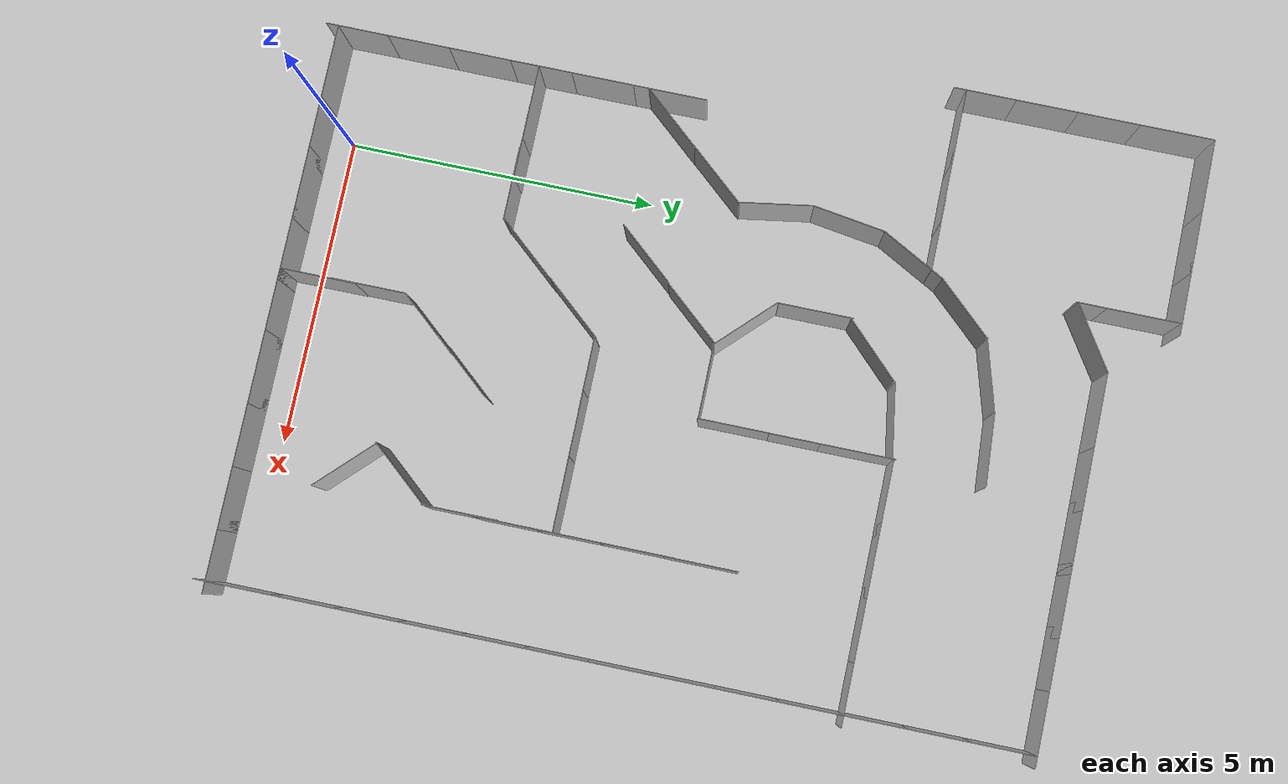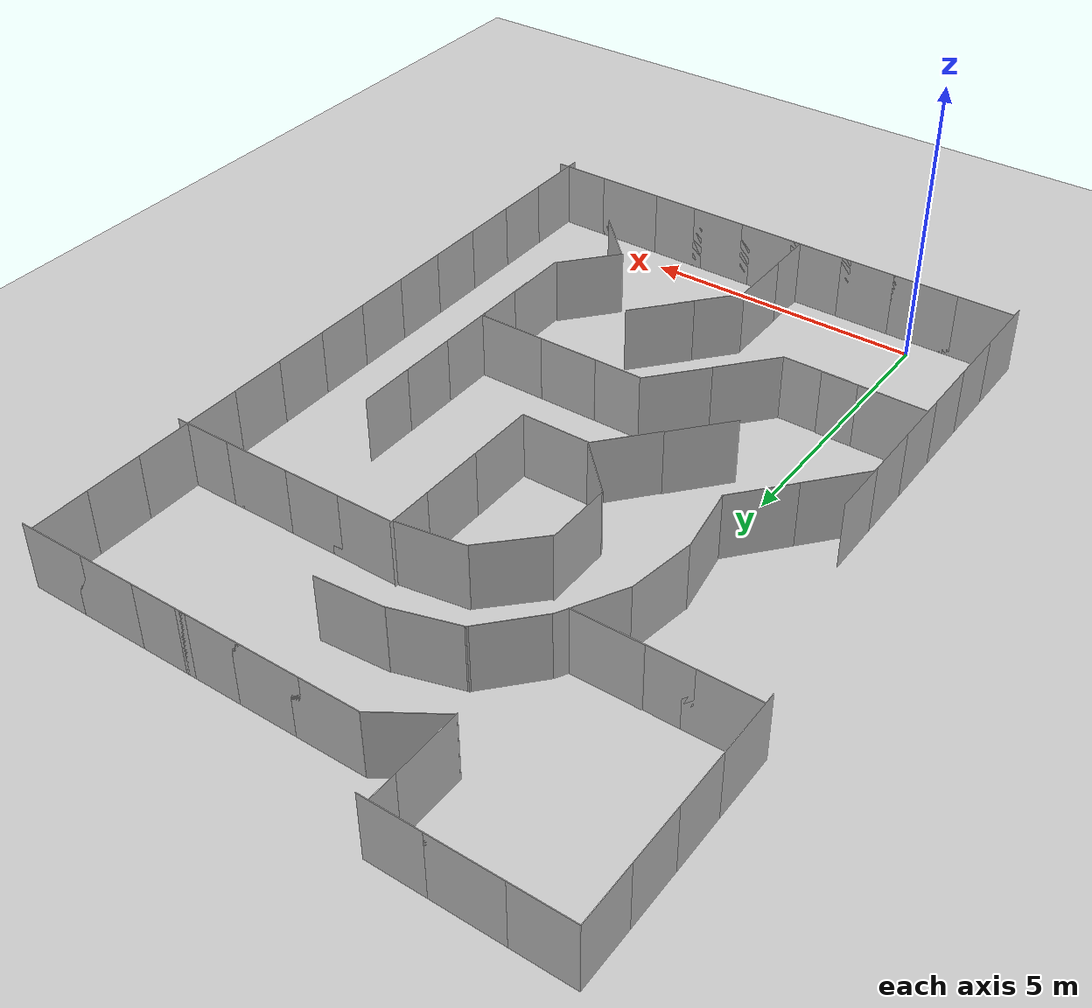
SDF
<sdf version="1.6">
 <world name="default">
  <light name="sun" type="directional">
   <pose>0 0 10 0 -0 0</pose>
   <diffuse>0.8 0.8 0.8 1</diffuse>
   <specular>0.2 0.2 0.2 1</specular>
   <attenuation>
    <range>1000</range>
    <constant>0.9</constant>
    <linear>0.01</linear>
    <quadratic>0.001</quadratic>
   </attenuation>
   <direction>-0.5 0.1 -0.9</direction>
  </light>
  <model name="ground_plane">
   <static>1</static>
   <link name="link">
    <collision name="collision">
     <geometry><plane><normal>0 0 1</normal><size>100 100</size></plane></geometry>
     <surface>
      <contact><collide_bitmask>65535</collide_bitmask></contact>
      <friction><ode><mu>100</mu><mu2>50</mu2></ode></friction>
     </surface>
    </collision>
    <visual name="visual">
     <cast_shadows>0</cast_shadows>
     <geometry><plane><normal>0 0 1</normal><size>100 100</size></plane></geometry>
     <material>
      <script><uri>file://media/materials/scripts/gazebo.material</uri><name>Gazebo/Grey</name></script>
     </material>
    </visual>
   </link>
  </model>
  <gravity>0 0 -9.8</gravity>
  <magnetic_field>6e-06 2.3e-05 -4.2e-05</magnetic_field>
  <atmosphere type="adiabatic"/>
  <physics name="default_physics" default="0" type="ode">
   <max_step_size>0.001</max_step_size>
   <real_time_factor>1</real_time_factor>
   <real_time_update_rate>1000</real_time_update_rate>
  </physics>
  <scene><ambient>0.4 0.4 0.4 1</ambient><background>0.7 0.7 0.7 1</background><shadows>1</shadows></scene>
  <audio><device>default</device></audio>
  <spherical_coordinates>
   <surface_model>EARTH_WGS84</surface_model>
   <latitude_deg>0</latitude_deg>
   <longitude_deg>0</longitude_deg>
   <elevation>0</elevation>
   <heading_deg>0</heading_deg>
  </spherical_coordinates>
  <model name="nist_maze_wall_120">
   <static>1</static>
   <link name="nist_maze_wall_120_link">
    <collision name="collision">
     <geometry>
      <mesh><uri>model://nist_maze_wall_120/meshes/nist_maze_wall_120.dae</uri><scale>1 1 1</scale></mesh>
     </geometry>
    </collision>
    <visual name="visual">
     <geometry>
      <mesh><uri>model://nist_maze_wall_120/meshes/nist_maze_wall_120.dae</uri><scale>1 1 1</scale></mesh>
     </geometry>
    </visual>
   </link>
   <pose>-1 -1 0 0 -0 0</pose>
  </model>
  <model name="nist_maze_wall_120_clone">
   <static>1</static>
   <link name="nist_maze_wall_120_link">
    <collision name="collision">
     <geometry>
      <mesh><uri>model://nist_maze_wall_120/meshes/nist_maze_wall_120.dae</uri><scale>1 1 1</scale></mesh>
     </geometry>
    </collision>
    <visual name="visual">
     <geometry>
      <mesh><uri>model://nist_maze_wall_120/meshes/nist_maze_wall_120.dae</uri><scale>1 1 1</scale></mesh>
     </geometry>
    </visual>
   </link>
   <pose>0 -1 0 0 -0 0</pose>
  </model>
  <model name="nist_maze_wall_120_clone_0">
   <static>1</static>
   <link name="nist_maze_wall_120_link">
    <collision name="collision">
     <geometry>
      <mesh><uri>model://nist_maze_wall_120/meshes/nist_maze_wall_120.dae</uri><scale>1 1 1</scale></mesh>
     </geometry>
    </collision>
    <visual name="visual">
     <geometry>
      <mesh><uri>model://nist_maze_wall_120/meshes/nist_maze_wall_120.dae</uri><scale>1 1 1</scale></mesh>
     </geometry>
    </visual>
   </link>
   <pose>1 -1 0 0 -0 0</pose>
  </model>
  <model name="nist_maze_wall_120_clone_0_clone_2">
   <static>1</static>
   <link name="nist_maze_wall_120_link">
    <collision name="collision">
     <geometry>
      <mesh><uri>model://nist_maze_wall_120/meshes/nist_maze_wall_120.dae</uri><scale>1 1 1</scale></mesh>
     </geometry>
    </collision>
    <visual name="visual">
     <geometry>
      <mesh><uri>model://nist_maze_wall_120/meshes/nist_maze_wall_120.dae</uri><scale>1 1 1</scale></mesh>
     </geometry>
    </visual>
   </link>
   <pose>4 -1 0 0 -0 0</pose>
  </model>
  <model name="nist_maze_wall_120_clone_0_clone_7">
   <static>1</static>
   <link name="nist_maze_wall_120_link">
    <collision name="collision">
     <geometry>
      <mesh><uri>model://nist_maze_wall_120/meshes/nist_maze_wall_120.dae</uri><scale>1 1 1</scale></mesh>
     </geometry>
    </collision>
    <visual name="visual">
     <geometry>
      <mesh><uri>model://nist_maze_wall_120/meshes/nist_maze_wall_120.dae</uri><scale>1 1 1</scale></mesh>
     </geometry>
    </visual>
   </link>
   <pose>5 -1 0 0 -0 0</pose>
  </model>
  <model name="nist_maze_wall_120_clone_0_clone_8">
   <static>1</static>
   <link name="nist_maze_wall_120_link">
    <collision name="collision">
     <geometry>
      <mesh><uri>model://nist_maze_wall_120/meshes/nist_maze_wall_120.dae</uri><scale>1 1 1</scale></mesh>
     </geometry>
    </collision>
    <visual name="visual">
     <geometry>
      <mesh><uri>model://nist_maze_wall_120/meshes/nist_maze_wall_120.dae</uri><scale>1 1 1</scale></mesh>
     </geometry>
    </visual>
   </link>
   <pose>6 -1 0 0 -0 0</pose>
  </model>
  <model name="nist_maze_wall_120_clone_0_clone_0_clone">
   <static>1</static>
   <link name="nist_maze_wall_120_link">
    <collision name="collision">
     <geometry>
      <mesh><uri>model://nist_maze_wall_120/meshes/nist_maze_wall_120.dae</uri><scale>1 1 1</scale></mesh>
     </geometry>
    </collision>
    <visual name="visual">
     <geometry>
      <mesh><uri>model://nist_maze_wall_120/meshes/nist_maze_wall_120.dae</uri><scale>1 1 1</scale></mesh>
     </geometry>
    </visual>
   </link>
   <pose>2 -1 0 0 -0 0</pose>
  </model>
  <model name="nist_maze_wall_120_clone_0_clone_8_clone">
   <static>1</static>
   <link name="nist_maze_wall_120_link">
    <collision name="collision">
     <geometry>
      <mesh><uri>model://nist_maze_wall_120/meshes/nist_maze_wall_120.dae</uri><scale>1 1 1</scale></mesh>
     </geometry>
    </collision>
    <visual name="visual">
     <geometry>
      <mesh><uri>model://nist_maze_wall_120/meshes/nist_maze_wall_120.dae</uri><scale>1 1 1</scale></mesh>
     </geometry>
    </visual>
   </link>
   <pose>3 1 0 0 -0 1.5708</pose>
  </model>
  <model name="nist_maze_wall_120_clone_0_clone_8_clone_clone">
   <static>1</static>
   <link name="nist_maze_wall_120_link">
    <collision name="collision">
     <geometry>
      <mesh><uri>model://nist_maze_wall_120/meshes/nist_maze_wall_120.dae</uri><scale>1 1 1</scale></mesh>
     </geometry>
    </collision>
    <visual name="visual">
     <geometry>
      <mesh><uri>model://nist_maze_wall_120/meshes/nist_maze_wall_120.dae</uri><scale>1 1 1</scale></mesh>
     </geometry>
    </visual>
   </link>
   <pose>3.00875 0.203464 0 0 -0 1.5708</pose>
  </model>
  <model name="nist_maze_wall_120_clone_0_clone_8_clone_clone_0">
   <static>1</static>
   <link name="nist_maze_wall_120_link">
    <collision name="collision">
     <geometry>
      <mesh><uri>model://nist_maze_wall_120/meshes/nist_maze_wall_120.dae</uri><scale>1 1 1</scale></mesh>
     </geometry>
    </collision>
    <visual name="visual">
     <geometry>
      <mesh><uri>model://nist_maze_wall_120/meshes/nist_maze_wall_120.dae</uri><scale>1 1 1</scale></mesh>
     </geometry>
    </visual>
   </link>
   <pose>6.18807 6 0 0 -0 1.5708</pose>
  </model>
  <model name="nist_maze_wall_120_clone_0_clone_8_clone_clone_1">
   <static>1</static>
   <link name="nist_maze_wall_120_link">
    <collision name="collision">
     <geometry>
      <mesh><uri>model://nist_maze_wall_120/meshes/nist_maze_wall_120.dae</uri><scale>1 1 1</scale></mesh>
     </geometry>
    </collision>
    <visual name="visual">
     <geometry>
      <mesh><uri>model://nist_maze_wall_120/meshes/nist_maze_wall_120.dae</uri><scale>1 1 1</scale></mesh>
     </geometry>
    </visual>
   </link>
   <pose>6.18772 5 0 0 -0 1.5708</pose>
  </model>
  <model name="nist_maze_wall_120_clone_0_clone_8_clone_clone_2">
   <static>1</static>
   <link name="nist_maze_wall_120_link">
    <collision name="collision">
     <geometry>
      <mesh><uri>model://nist_maze_wall_120/meshes/nist_maze_wall_120.dae</uri><scale>1 1 1</scale></mesh>
     </geometry>
    </collision>
    <visual name="visual">
     <geometry>
      <mesh><uri>model://nist_maze_wall_120/meshes/nist_maze_wall_120.dae</uri><scale>1 1 1</scale></mesh>
     </geometry>
    </visual>
   </link>
   <pose>8 2 0 0 -0 1.5708</pose>
  </model>
  <model name="nist_maze_wall_120_clone_0_clone_8_clone_clone_3">
   <static>1</static>
   <link name="nist_maze_wall_120_link">
    <collision name="collision">
     <geometry>
      <mesh><uri>model://nist_maze_wall_120/meshes/nist_maze_wall_120.dae</uri><scale>1 1 1</scale></mesh>
     </geometry>
    </collision>
    <visual name="visual">
     <geometry>
      <mesh><uri>model://nist_maze_wall_120/meshes/nist_maze_wall_120.dae</uri><scale>1 1 1</scale></mesh>
     </geometry>
    </visual>
   </link>
   <pose>8 0 0 0 -0 1.5708</pose>
  </model>
  <model name="nist_maze_wall_120_clone_0_clone_8_clone_clone_4">
   <static>1</static>
   <link name="nist_maze_wall_120_link">
    <collision name="collision">
     <geometry>
      <mesh><uri>model://nist_maze_wall_120/meshes/nist_maze_wall_120.dae</uri><scale>1 1 1</scale></mesh>
     </geometry>
    </collision>
    <visual name="visual">
     <geometry>
      <mesh><uri>model://nist_maze_wall_120/meshes/nist_maze_wall_120.dae</uri><scale>1 1 1</scale></mesh>
     </geometry>
    </visual>
   </link>
   <pose>8 1 0 0 -0 1.5708</pose>
  </model>
  <model name="nist_maze_wall_120_clone_0_clone_8_clone_clone_5">
   <static>1</static>
   <link name="nist_maze_wall_120_link">
    <collision name="collision">
     <geometry>
      <mesh><uri>model://nist_maze_wall_120/meshes/nist_maze_wall_120.dae</uri><scale>1 1 1</scale></mesh>
     </geometry>
    </collision>
    <visual name="visual">
     <geometry>
      <mesh><uri>model://nist_maze_wall_120/meshes/nist_maze_wall_120.dae</uri><scale>1 1 1</scale></mesh>
     </geometry>
    </visual>
   </link>
   <pose>8 4 0 0 -0 1.5708</pose>
  </model>
  <model name="nist_maze_wall_120_clone_0_clone_8_clone_clone_6">
   <static>1</static>
   <link name="nist_maze_wall_120_link">
    <collision name="collision">
     <geometry>
      <mesh><uri>model://nist_maze_wall_120/meshes/nist_maze_wall_120.dae</uri><scale>1 1 1</scale></mesh>
     </geometry>
    </collision>
    <visual name="visual">
     <geometry>
      <mesh><uri>model://nist_maze_wall_120/meshes/nist_maze_wall_120.dae</uri><scale>1 1 1</scale></mesh>
     </geometry>
    </visual>
   </link>
   <pose>-1 0 0 0 -0 1.5708</pose>
  </model>
  <model name="nist_maze_wall_120_clone_0_clone_8_clone_clone_7">
   <static>1</static>
   <link name="nist_maze_wall_120_link">
    <collision name="collision">
     <geometry>
      <mesh><uri>model://nist_maze_wall_120/meshes/nist_maze_wall_120.dae</uri><scale>1 1 1</scale></mesh>
     </geometry>
    </collision>
    <visual name="visual">
     <geometry>
      <mesh><uri>model://nist_maze_wall_120/meshes/nist_maze_wall_120.dae</uri><scale>1 1 1</scale></mesh>
     </geometry>
    </visual>
   </link>
   <pose>-1 1 0 0 -0 1.5708</pose>
  </model>
  <model name="nist_maze_wall_120_clone_0_clone_8_clone_clone_11">
   <static>1</static>
   <link name="nist_maze_wall_120_link">
    <collision name="collision">
     <geometry>
      <mesh><uri>model://nist_maze_wall_120/meshes/nist_maze_wall_120.dae</uri><scale>1 1 1</scale></mesh>
     </geometry>
    </collision>
    <visual name="visual">
     <geometry>
      <mesh><uri>model://nist_maze_wall_120/meshes/nist_maze_wall_120.dae</uri><scale>1 1 1</scale></mesh>
     </geometry>
    </visual>
   </link>
   <pose>-1 2 0 0 -0 1.5708</pose>
  </model>
  <model name="nist_maze_wall_120_clone_1">
   <static>1</static>
   <link name="nist_maze_wall_120_link">
    <collision name="collision">
     <geometry>
      <mesh><uri>model://nist_maze_wall_120/meshes/nist_maze_wall_120.dae</uri><scale>1 1 1</scale></mesh>
     </geometry>
    </collision>
    <visual name="visual">
     <geometry>
      <mesh><uri>model://nist_maze_wall_120/meshes/nist_maze_wall_120.dae</uri><scale>1 1 1</scale></mesh>
     </geometry>
    </visual>
   </link>
   <pose>-1 2.27384 0 0 -0 0</pose>
  </model>
  <model name="nist_maze_wall_120_clone_2">
   <static>1</static>
   <link name="nist_maze_wall_120_link">
    <collision name="collision">
     <geometry>
      <mesh><uri>model://nist_maze_wall_120/meshes/nist_maze_wall_120.dae</uri><scale>1 1 1</scale></mesh>
     </geometry>
    </collision>
    <visual name="visual">
     <geometry>
      <mesh><uri>model://nist_maze_wall_120/meshes/nist_maze_wall_120.dae</uri><scale>1 1 1</scale></mesh>
     </geometry>
    </visual>
   </link>
   <pose>0.34177 2.25834 0 0 -0 0</pose>
  </model>
  <model name="nist_maze_wall_120_clone_3">
   <static>1</static>
   <link name="nist_maze_wall_120_link">
    <collision name="collision">
     <geometry>
      <mesh><uri>model://nist_maze_wall_120/meshes/nist_maze_wall_120.dae</uri><scale>1 1 1</scale></mesh>
     </geometry>
    </collision>
    <visual name="visual">
     <geometry>
      <mesh><uri>model://nist_maze_wall_120/meshes/nist_maze_wall_120.dae</uri><scale>1 1 1</scale></mesh>
     </geometry>
    </visual>
   </link>
   <pose>3.05818 4.05787 0 0 -0 0</pose>
  </model>
  <model name="nist_maze_wall_120_clone_4">
   <static>1</static>
   <link name="nist_maze_wall_120_link">
    <collision name="collision">
     <geometry>
      <mesh><uri>model://nist_maze_wall_120/meshes/nist_maze_wall_120.dae</uri><scale>1 1 1</scale></mesh>
     </geometry>
    </collision>
    <visual name="visual">
     <geometry>
      <mesh><uri>model://nist_maze_wall_120/meshes/nist_maze_wall_120.dae</uri><scale>1 1 1</scale></mesh>
     </geometry>
    </visual>
   </link>
   <pose>4.98289 4.06377 0 0 -0 0</pose>
  </model>
  <model name="nist_maze_wall_120_clone_5">
   <static>1</static>
   <link name="nist_maze_wall_120_link">
    <collision name="collision">
     <geometry>
      <mesh><uri>model://nist_maze_wall_120/meshes/nist_maze_wall_120.dae</uri><scale>1 1 1</scale></mesh>
     </geometry>
    </collision>
    <visual name="visual">
     <geometry>
      <mesh><uri>model://nist_maze_wall_120/meshes/nist_maze_wall_120.dae</uri><scale>1 1 1</scale></mesh>
     </geometry>
    </visual>
   </link>
   <pose>5.62002 1.74898 0 0 -0 0.859737</pose>
  </model>
  <model name="nist_maze_wall_120_clone_6">
   <static>1</static>
   <link name="nist_maze_wall_120_link">
    <collision name="collision">
     <geometry>
      <mesh><uri>model://nist_maze_wall_120/meshes/nist_maze_wall_120.dae</uri><scale>1 1 1</scale></mesh>
     </geometry>
    </collision>
    <visual name="visual">
     <geometry>
      <mesh><uri>model://nist_maze_wall_120/meshes/nist_maze_wall_120.dae</uri><scale>1 1 1</scale></mesh>
     </geometry>
    </visual>
   </link>
   <pose>3 -1 0 0 -0 0</pose>
  </model>
  <model name="nist_maze_wall_120_clone_7">
   <static>1</static>
   <link name="nist_maze_wall_120_link">
    <collision name="collision">
     <geometry>
      <mesh><uri>model://nist_maze_wall_120/meshes/nist_maze_wall_120.dae</uri><scale>1 1 1</scale></mesh>
     </geometry>
    </collision>
    <visual name="visual">
     <geometry>
      <mesh><uri>model://nist_maze_wall_120/meshes/nist_maze_wall_120.dae</uri><scale>1 1 1</scale></mesh>
     </geometry>
    </visual>
   </link>
   <pose>3.9274 4.06134 0 0 -0 0</pose>
  </model>
  <model name="nist_maze_wall_120_clone_0_clone_8_clone_0">
   <static>1</static>
   <link name="nist_maze_wall_120_link">
    <collision name="collision">
     <geometry>
      <mesh><uri>model://nist_maze_wall_120/meshes/nist_maze_wall_120.dae</uri><scale>1 1 1</scale></mesh>
     </geometry>
    </collision>
    <visual name="visual">
     <geometry>
      <mesh><uri>model://nist_maze_wall_120/meshes/nist_maze_wall_120.dae</uri><scale>1 1 1</scale></mesh>
     </geometry>
    </visual>
   </link>
   <pose>7 -1 0 0 -0 0</pose>
  </model>
  <model name="nist_maze_wall_120_clone_0_clone_8_clone_clone_2_clone">
   <static>1</static>
   <link name="nist_maze_wall_120_link">
    <collision name="collision">
     <geometry>
      <mesh><uri>model://nist_maze_wall_120/meshes/nist_maze_wall_120.dae</uri><scale>1 1 1</scale></mesh>
     </geometry>
    </collision>
    <visual name="visual">
     <geometry>
      <mesh><uri>model://nist_maze_wall_120/meshes/nist_maze_wall_120.dae</uri><scale>1 1 1</scale></mesh>
     </geometry>
    </visual>
   </link>
   <pose>8 3 0 0 -0 1.5708</pose>
  </model>
  <model name="nist_maze_wall_120_clone_0_clone_9_clone_clone">
   <static>1</static>
   <link name="nist_maze_wall_120_link">
    <collision name="collision">
     <geometry>
      <mesh><uri>model://nist_maze_wall_120/meshes/nist_maze_wall_120.dae</uri><scale>1 1 1</scale></mesh>
     </geometry>
    </collision>
    <visual name="visual">
     <geometry>
      <mesh><uri>model://nist_maze_wall_120/meshes/nist_maze_wall_120.dae</uri><scale>1 1 1</scale></mesh>
     </geometry>
    </visual>
   </link>
   <pose>4.78653 0.858972 0 0 0 -0.785398</pose>
  </model>
  <model name="nist_maze_wall_120_clone_0_clone_8_clone_clone_5_clone">
   <static>1</static>
   <link name="nist_maze_wall_120_link">
    <collision name="collision">
     <geometry>
      <mesh><uri>model://nist_maze_wall_120/meshes/nist_maze_wall_120.dae</uri><scale>1 1 1</scale></mesh>
     </geometry>
    </collision>
    <visual name="visual">
     <geometry>
      <mesh><uri>model://nist_maze_wall_120/meshes/nist_maze_wall_120.dae</uri><scale>1 1 1</scale></mesh>
     </geometry>
    </visual>
   </link>
   <pose>8 5 0 0 -0 1.5708</pose>
  </model>
  <model name="nist_maze_wall_120_clone_0_clone_8_clone_clone_5_clone_0">
   <static>1</static>
   <link name="nist_maze_wall_120_link">
    <collision name="collision">
     <geometry>
      <mesh><uri>model://nist_maze_wall_120/meshes/nist_maze_wall_120.dae</uri><scale>1 1 1</scale></mesh>
     </geometry>
    </collision>
    <visual name="visual">
     <geometry>
      <mesh><uri>model://nist_maze_wall_120/meshes/nist_maze_wall_120.dae</uri><scale>1 1 1</scale></mesh>
     </geometry>
    </visual>
   </link>
   <pose>8 6 0 0 -0 1.5708</pose>
  </model>
  <model name="nist_maze_wall_120_clone_0_clone_8_clone_clone_5_clone_1">
   <static>1</static>
   <link name="nist_maze_wall_120_link">
    <collision name="collision">
     <geometry>
      <mesh><uri>model://nist_maze_wall_120/meshes/nist_maze_wall_120.dae</uri><scale>1 1 1</scale></mesh>
     </geometry>
    </collision>
    <visual name="visual">
     <geometry>
      <mesh><uri>model://nist_maze_wall_120/meshes/nist_maze_wall_120.dae</uri><scale>1 1 1</scale></mesh>
     </geometry>
    </visual>
   </link>
   <pose>8 7 0 0 -0 1.5708</pose>
  </model>
  <model name="nist_maze_wall_120_clone_0_clone_8_clone_clone_5_clone_2">
   <static>1</static>
   <link name="nist_maze_wall_120_link">
    <collision name="collision">
     <geometry>
      <mesh><uri>model://nist_maze_wall_120/meshes/nist_maze_wall_120.dae</uri><scale>1 1 1</scale></mesh>
     </geometry>
    </collision>
    <visual name="visual">
     <geometry>
      <mesh><uri>model://nist_maze_wall_120/meshes/nist_maze_wall_120.dae</uri><scale>1 1 1</scale></mesh>
     </geometry>
    </visual>
   </link>
   <pose>8 8 0 0 -0 1.5708</pose>
  </model>
  <model name="nist_maze_wall_120_clone_0_clone_8_clone_clone_5_clone_3">
   <static>1</static>
   <link name="nist_maze_wall_120_link">
    <collision name="collision">
     <geometry>
      <mesh><uri>model://nist_maze_wall_120/meshes/nist_maze_wall_120.dae</uri><scale>1 1 1</scale></mesh>
     </geometry>
    </collision>
    <visual name="visual">
     <geometry>
      <mesh><uri>model://nist_maze_wall_120/meshes/nist_maze_wall_120.dae</uri><scale>1 1 1</scale></mesh>
     </geometry>
    </visual>
   </link>
   <pose>8 9 0 0 -0 1.5708</pose>
  </model>
  <model name="nist_maze_wall_120_clone_0_clone_8_clone_clone_5_clone_4">
   <static>1</static>
   <link name="nist_maze_wall_120_link">
    <collision name="collision">
     <geometry>
      <mesh><uri>model://nist_maze_wall_120/meshes/nist_maze_wall_120.dae</uri><scale>1 1 1</scale></mesh>
     </geometry>
    </collision>
    <visual name="visual">
     <geometry>
      <mesh><uri>model://nist_maze_wall_120/meshes/nist_maze_wall_120.dae</uri><scale>1 1 1</scale></mesh>
     </geometry>
    </visual>
   </link>
   <pose>6.17481 3.1793 0 0 -0 1.5708</pose>
  </model>
  <model name="nist_maze_wall_120_clone_0_clone_8_clone_clone_5_clone_5">
   <static>1</static>
   <link name="nist_maze_wall_120_link">
    <collision name="collision">
     <geometry>
      <mesh><uri>model://nist_maze_wall_120/meshes/nist_maze_wall_120.dae</uri><scale>1 1 1</scale></mesh>
     </geometry>
    </collision>
    <visual name="visual">
     <geometry>
      <mesh><uri>model://nist_maze_wall_120/meshes/nist_maze_wall_120.dae</uri><scale>1 1 1</scale></mesh>
     </geometry>
    </visual>
   </link>
   <pose>6.19194 7 0 0 -0 1.5708</pose>
  </model>
  <model name="nist_maze_wall_120_clone_0_clone_8_clone_clone_5_clone_6">
   <static>1</static>
   <link name="nist_maze_wall_120_link">
    <collision name="collision">
     <geometry>
      <mesh><uri>model://nist_maze_wall_120/meshes/nist_maze_wall_120.dae</uri><scale>1 1 1</scale></mesh>
     </geometry>
    </collision>
    <visual name="visual">
     <geometry>
      <mesh><uri>model://nist_maze_wall_120/meshes/nist_maze_wall_120.dae</uri><scale>1 1 1</scale></mesh>
     </geometry>
    </visual>
   </link>
   <pose>6.18586 4 0 0 -0 1.5708</pose>
  </model>
  <model name="nist_maze_wall_120_clone_7_clone">
   <static>1</static>
   <link name="nist_maze_wall_120_link">
    <collision name="collision">
     <geometry>
      <mesh><uri>model://nist_maze_wall_120/meshes/nist_maze_wall_120.dae</uri><scale>1 1 1</scale></mesh>
     </geometry>
    </collision>
    <visual name="visual">
     <geometry>
      <mesh><uri>model://nist_maze_wall_120/meshes/nist_maze_wall_120.dae</uri><scale>1 1 1</scale></mesh>
     </geometry>
    </visual>
   </link>
   <pose>7 9 0 0 -0 0</pose>
  </model>
  <model name="nist_maze_wall_120_clone_7_clone_0">
   <static>1</static>
   <link name="nist_maze_wall_120_link">
    <collision name="collision">
     <geometry>
      <mesh><uri>model://nist_maze_wall_120/meshes/nist_maze_wall_120.dae</uri><scale>1 1 1</scale></mesh>
     </geometry>
    </collision>
    <visual name="visual">
     <geometry>
      <mesh><uri>model://nist_maze_wall_120/meshes/nist_maze_wall_120.dae</uri><scale>1 1 1</scale></mesh>
     </geometry>
    </visual>
   </link>
   <pose>6 9 0 0 -0 0</pose>
  </model>
  <model name="nist_maze_wall_120_clone_7_clone_1">
   <static>1</static>
   <link name="nist_maze_wall_120_link">
    <collision name="collision">
     <geometry>
      <mesh><uri>model://nist_maze_wall_120/meshes/nist_maze_wall_120.dae</uri><scale>1 1 1</scale></mesh>
     </geometry>
    </collision>
    <visual name="visual">
     <geometry>
      <mesh><uri>model://nist_maze_wall_120/meshes/nist_maze_wall_120.dae</uri><scale>1 1 1</scale></mesh>
     </geometry>
    </visual>
   </link>
   <pose>5 9 0 0 -0 0</pose>
  </model>
  <model name="nist_maze_wall_120_clone_7_clone_2">
   <static>1</static>
   <link name="nist_maze_wall_120_link">
    <collision name="collision">
     <geometry>
      <mesh><uri>model://nist_maze_wall_120/meshes/nist_maze_wall_120.dae</uri><scale>1 1 1</scale></mesh>
     </geometry>
    </collision>
    <visual name="visual">
     <geometry>
      <mesh><uri>model://nist_maze_wall_120/meshes/nist_maze_wall_120.dae</uri><scale>1 1 1</scale></mesh>
     </geometry>
    </visual>
   </link>
   <pose>4 9 0 0 -0 0</pose>
  </model>
  <model name="nist_maze_wall_120_clone_0_clone_8_clone_clone_5_clone_6_clone">
   <static>1</static>
   <link name="nist_maze_wall_120_link">
    <collision name="collision">
     <geometry>
      <mesh><uri>model://nist_maze_wall_120/meshes/nist_maze_wall_120.dae</uri><scale>1 1 1</scale></mesh>
     </geometry>
    </collision>
    <visual name="visual">
     <geometry>
      <mesh><uri>model://nist_maze_wall_120/meshes/nist_maze_wall_120.dae</uri><scale>1 1 1</scale></mesh>
     </geometry>
    </visual>
   </link>
   <pose>3.99717 7.08657 0 0 -0 1.5708</pose>
  </model>
  <model name="nist_maze_wall_120_clone_0_clone_8_clone_clone_5_clone_6_clone_0">
   <static>1</static>
   <link name="nist_maze_wall_120_link">
    <collision name="collision">
     <geometry>
      <mesh><uri>model://nist_maze_wall_120/meshes/nist_maze_wall_120.dae</uri><scale>1 1 1</scale></mesh>
     </geometry>
    </collision>
    <visual name="visual">
     <geometry>
      <mesh><uri>model://nist_maze_wall_120/meshes/nist_maze_wall_120.dae</uri><scale>1 1 1</scale></mesh>
     </geometry>
    </visual>
   </link>
   <pose>3.99994 9.03747 0 0 -0 1.5708</pose>
  </model>
  <model name="nist_maze_wall_120_clone_0_clone_8_clone_clone_5_clone_6_clone_1">
   <static>1</static>
   <link name="nist_maze_wall_120_link">
    <collision name="collision">
     <geometry>
      <mesh><uri>model://nist_maze_wall_120/meshes/nist_maze_wall_120.dae</uri><scale>1 1 1</scale></mesh>
     </geometry>
    </collision>
    <visual name="visual">
     <geometry>
      <mesh><uri>model://nist_maze_wall_120/meshes/nist_maze_wall_120.dae</uri><scale>1 1 1</scale></mesh>
     </geometry>
    </visual>
   </link>
   <pose>3.99994 8.2248 0 0 -0 1.5708</pose>
  </model>
  <model name="nist_maze_wall_120_clone_0_clone_8_clone_clone_5_clone_6_clone_2">
   <static>1</static>
   <link name="nist_maze_wall_120_link">
    <collision name="collision">
     <geometry>
      <mesh><uri>model://nist_maze_wall_120/meshes/nist_maze_wall_120.dae</uri><scale>1 1 1</scale></mesh>
     </geometry>
    </collision>
    <visual name="visual">
     <geometry>
      <mesh><uri>model://nist_maze_wall_120/meshes/nist_maze_wall_120.dae</uri><scale>1 1 1</scale></mesh>
     </geometry>
    </visual>
   </link>
   <pose>-1 3 0 0 -0 1.5708</pose>
  </model>
  <model name="nist_maze_wall_120_clone_0_clone_8_clone_clone_5_clone_6_clone_3">
   <static>1</static>
   <link name="nist_maze_wall_120_link">
    <collision name="collision">
     <geometry>
      <mesh><uri>model://nist_maze_wall_120/meshes/nist_maze_wall_120.dae</uri><scale>1 1 1</scale></mesh>
     </geometry>
    </collision>
    <visual name="visual">
     <geometry>
      <mesh><uri>model://nist_maze_wall_120/meshes/nist_maze_wall_120.dae</uri><scale>1 1 1</scale></mesh>
     </geometry>
    </visual>
   </link>
   <pose>-1 4 0 0 -0 1.5708</pose>
  </model>
  <model name="nist_maze_wall_120_clone_0_clone_8_clone_clone_5_clone_6_clone_4">
   <static>1</static>
   <link name="nist_maze_wall_120_link">
    <collision name="collision">
     <geometry>
      <mesh><uri>model://nist_maze_wall_120/meshes/nist_maze_wall_120.dae</uri><scale>1 1 1</scale></mesh>
     </geometry>
    </collision>
    <visual name="visual">
     <geometry>
      <mesh><uri>model://nist_maze_wall_120/meshes/nist_maze_wall_120.dae</uri><scale>1 1 1</scale></mesh>
     </geometry>
    </visual>
   </link>
   <pose>-1 5 0 0 -0 1.5708</pose>
  </model>
  <model name="nist_maze_wall_120_clone_3_clone">
   <static>1</static>
   <link name="nist_maze_wall_120_link">
    <collision name="collision">
     <geometry>
      <mesh><uri>model://nist_maze_wall_120/meshes/nist_maze_wall_120.dae</uri><scale>1 1 1</scale></mesh>
     </geometry>
    </collision>
    <visual name="visual">
     <geometry>
      <mesh><uri>model://nist_maze_wall_120/meshes/nist_maze_wall_120.dae</uri><scale>1 1 1</scale></mesh>
     </geometry>
    </visual>
   </link>
   <pose>2.79461 5.90045 0 0 -0 0</pose>
  </model>
  <model name="nist_maze_wall_120_clone_0_clone_9_clone_2_clone">
   <static>1</static>
   <link name="nist_maze_wall_120_link">
    <collision name="collision">
     <geometry>
      <mesh><uri>model://nist_maze_wall_120/meshes/nist_maze_wall_120.dae</uri><scale>1 1 1</scale></mesh>
     </geometry>
    </collision>
    <visual name="visual">
     <geometry>
      <mesh><uri>model://nist_maze_wall_120/meshes/nist_maze_wall_120.dae</uri><scale>1 1 1</scale></mesh>
     </geometry>
    </visual>
   </link>
   <pose>1.35485 6.50778 0 0 0 -0.785398</pose>
  </model>
  <model name="nist_maze_wall_120_clone_5_clone_0">
   <static>1</static>
   <link name="nist_maze_wall_120_link">
    <collision name="collision">
     <geometry>
      <mesh><uri>model://nist_maze_wall_120/meshes/nist_maze_wall_120.dae</uri><scale>1 1 1</scale></mesh>
     </geometry>
    </collision>
    <visual name="visual">
     <geometry>
      <mesh><uri>model://nist_maze_wall_120/meshes/nist_maze_wall_120.dae</uri><scale>1 1 1</scale></mesh>
     </geometry>
    </visual>
   </link>
   <pose>0.414682 7.11795 0 0 -0 1.72865</pose>
  </model>
  <model name="nist_maze_wall_120_clone_0_clone_8_clone_clone_5_clone_6_clone_3_clone_0">
   <static>1</static>
   <link name="nist_maze_wall_120_link">
    <collision name="collision">
     <geometry>
      <mesh><uri>model://nist_maze_wall_120/meshes/nist_maze_wall_120.dae</uri><scale>1 1 1</scale></mesh>
     </geometry>
    </collision>
    <visual name="visual">
     <geometry>
      <mesh><uri>model://nist_maze_wall_120/meshes/nist_maze_wall_120.dae</uri><scale>1 1 1</scale></mesh>
     </geometry>
    </visual>
   </link>
   <pose>1.96489 7.96218 0 0 -0 1.5708</pose>
  </model>
  <model name="nist_maze_wall_120_clone_0_clone_8_clone_clone_5_clone_6_clone_3_clone_1">
   <static>1</static>
   <link name="nist_maze_wall_120_link">
    <collision name="collision">
     <geometry>
      <mesh><uri>model://nist_maze_wall_120/meshes/nist_maze_wall_120.dae</uri><scale>1 1 1</scale></mesh>
     </geometry>
    </collision>
    <visual name="visual">
     <geometry>
      <mesh><uri>model://nist_maze_wall_120/meshes/nist_maze_wall_120.dae</uri><scale>1 1 1</scale></mesh>
     </geometry>
    </visual>
   </link>
   <pose>2.22415 8.52915 0 0 -0 0.791675</pose>
  </model>
  <model name="nist_maze_wall_120_clone_0_clone_8_clone_clone_5_clone_6_clone_3_clone_2">
   <static>1</static>
   <link name="nist_maze_wall_120_link">
    <collision name="collision">
     <geometry>
      <mesh><uri>model://nist_maze_wall_120/meshes/nist_maze_wall_120.dae</uri><scale>1 1 1</scale></mesh>
     </geometry>
    </collision>
    <visual name="visual">
     <geometry>
      <mesh><uri>model://nist_maze_wall_120/meshes/nist_maze_wall_120.dae</uri><scale>1 1 1</scale></mesh>
     </geometry>
    </visual>
   </link>
   <pose>2.70735 10.0722 0 0 0 -2.98341</pose>
  </model>
  <model name="nist_maze_wall_120_clone_0_clone_8_clone_clone_5_clone_6_clone_3_clone_3">
   <static>1</static>
   <link name="nist_maze_wall_120_link">
    <collision name="collision">
     <geometry>
      <mesh><uri>model://nist_maze_wall_120/meshes/nist_maze_wall_120.dae</uri><scale>1 1 1</scale></mesh>
     </geometry>
    </collision>
    <visual name="visual">
     <geometry>
      <mesh><uri>model://nist_maze_wall_120/meshes/nist_maze_wall_120.dae</uri><scale>1 1 1</scale></mesh>
     </geometry>
    </visual>
   </link>
   <pose>0.414432 8.10191 0 0 -0 1.42278</pose>
  </model>
  <model name="nist_maze_wall_120_clone_0_clone_8_clone_clone_5_clone_6_clone_3_clone_4">
   <static>1</static>
   <link name="nist_maze_wall_120_link">
    <collision name="collision">
     <geometry>
      <mesh><uri>model://nist_maze_wall_120/meshes/nist_maze_wall_120.dae</uri><scale>1 1 1</scale></mesh>
     </geometry>
    </collision>
    <visual name="visual">
     <geometry>
      <mesh><uri>model://nist_maze_wall_120/meshes/nist_maze_wall_120.dae</uri><scale>1 1 1</scale></mesh>
     </geometry>
    </visual>
   </link>
   <pose>-2 10 0 0 -0 1.5708</pose>
  </model>
  <model name="nist_maze_wall_120_clone_0_clone_8_clone_clone_5_clone_6_clone_3_clone_5">
   <static>1</static>
   <link name="nist_maze_wall_120_link">
    <collision name="collision">
     <geometry>
      <mesh><uri>model://nist_maze_wall_120/meshes/nist_maze_wall_120.dae</uri><scale>1 1 1</scale></mesh>
     </geometry>
    </collision>
    <visual name="visual">
     <geometry>
      <mesh><uri>model://nist_maze_wall_120/meshes/nist_maze_wall_120.dae</uri><scale>1 1 1</scale></mesh>
     </geometry>
    </visual>
   </link>
   <pose>0.418516 10.6418 0 0 0 -2.31183</pose>
  </model>
  <model name="nist_maze_wall_120_clone_7_clone_2_clone">
   <static>1</static>
   <link name="nist_maze_wall_120_link">
    <collision name="collision">
     <geometry>
      <mesh><uri>model://nist_maze_wall_120/meshes/nist_maze_wall_120.dae</uri><scale>1 1 1</scale></mesh>
     </geometry>
    </collision>
    <visual name="visual">
     <geometry>
      <mesh><uri>model://nist_maze_wall_120/meshes/nist_maze_wall_120.dae</uri><scale>1 1 1</scale></mesh>
     </geometry>
    </visual>
   </link>
   <pose>2.99049 10.4336 0 0 -0 0.070212</pose>
  </model>
  <model name="nist_maze_wall_120_clone_0_clone_8_clone_clone_5_clone_6_clone_3_clone_2_clone">
   <static>1</static>
   <link name="nist_maze_wall_120_link">
    <collision name="collision">
     <geometry>
      <mesh><uri>model://nist_maze_wall_120/meshes/nist_maze_wall_120.dae</uri><scale>1 1 1</scale></mesh>
     </geometry>
    </collision>
    <visual name="visual">
     <geometry>
      <mesh><uri>model://nist_maze_wall_120/meshes/nist_maze_wall_120.dae</uri><scale>1 1 1</scale></mesh>
     </geometry>
    </visual>
   </link>
   <pose>1.63321 11.3988 0 0 0 -2.85793</pose>
  </model>
  <model name="nist_maze_wall_120_clone_0_clone_8_clone_clone_5_clone_6_clone_3_clone_1_clone">
   <static>1</static>
   <link name="nist_maze_wall_120_link">
    <collision name="collision">
     <geometry>
      <mesh><uri>model://nist_maze_wall_120/meshes/nist_maze_wall_120.dae</uri><scale>1 1 1</scale></mesh>
     </geometry>
    </collision>
    <visual name="visual">
     <geometry>
      <mesh><uri>model://nist_maze_wall_120/meshes/nist_maze_wall_120.dae</uri><scale>1 1 1</scale></mesh>
     </geometry>
    </visual>
   </link>
   <pose>0.717398 9.00788 0 0 -0 1.07738</pose>
  </model>
  <model name="nist_maze_wall_120_clone_7_clone_0_clone">
   <static>1</static>
   <link name="nist_maze_wall_120_link">
    <collision name="collision">
     <geometry>
      <mesh><uri>model://nist_maze_wall_120/meshes/nist_maze_wall_120.dae</uri><scale>1 1 1</scale></mesh>
     </geometry>
    </collision>
    <visual name="visual">
     <geometry>
      <mesh><uri>model://nist_maze_wall_120/meshes/nist_maze_wall_120.dae</uri><scale>1 1 1</scale></mesh>
     </geometry>
    </visual>
   </link>
   <pose>-0.229042 9.00827 0 0 -0 0</pose>
  </model>
  <model name="nist_maze_wall_120_clone_7_clone_0_clone_clone">
   <static>1</static>
   <link name="nist_maze_wall_120_link">
    <collision name="collision">
     <geometry>
      <mesh><uri>model://nist_maze_wall_120/meshes/nist_maze_wall_120.dae</uri><scale>1 1 1</scale></mesh>
     </geometry>
    </collision>
    <visual name="visual">
     <geometry>
      <mesh><uri>model://nist_maze_wall_120/meshes/nist_maze_wall_120.dae</uri><scale>1 1 1</scale></mesh>
     </geometry>
    </visual>
   </link>
   <pose>-1 9 0 0 -0 0</pose>
  </model>
  <model name="nist_maze_wall_120_clone_0_clone_8_clone_clone_5_clone_6_clone_3_clone_4_clone">
   <static>1</static>
   <link name="nist_maze_wall_120_link">
    <collision name="collision">
     <geometry>
      <mesh><uri>model://nist_maze_wall_120/meshes/nist_maze_wall_120.dae</uri><scale>1 1 1</scale></mesh>
     </geometry>
    </collision>
    <visual name="visual">
     <geometry>
      <mesh><uri>model://nist_maze_wall_120/meshes/nist_maze_wall_120.dae</uri><scale>1 1 1</scale></mesh>
     </geometry>
    </visual>
   </link>
   <pose>-2 11 0 0 -0 1.5708</pose>
  </model>
  <model name="nist_maze_wall_120_clone_0_clone_8_clone_clone_5_clone_6_clone_3_clone_4_clone_0">
   <static>1</static>
   <link name="nist_maze_wall_120_link">
    <collision name="collision">
     <geometry>
      <mesh><uri>model://nist_maze_wall_120/meshes/nist_maze_wall_120.dae</uri><scale>1 1 1</scale></mesh>
     </geometry>
    </collision>
    <visual name="visual">
     <geometry>
      <mesh><uri>model://nist_maze_wall_120/meshes/nist_maze_wall_120.dae</uri><scale>1 1 1</scale></mesh>
     </geometry>
    </visual>
   </link>
   <pose>-2 12 0 0 -0 1.5708</pose>
  </model>
  <model name="nist_maze_wall_120_clone_0_clone_8_clone_clone_5_clone_6_clone_3_clone_4_clone_1">
   <static>1</static>
   <link name="nist_maze_wall_120_link">
    <collision name="collision">
     <geometry>
      <mesh><uri>model://nist_maze_wall_120/meshes/nist_maze_wall_120.dae</uri><scale>1 1 1</scale></mesh>
     </geometry>
    </collision>
    <visual name="visual">
     <geometry>
      <mesh><uri>model://nist_maze_wall_120/meshes/nist_maze_wall_120.dae</uri><scale>1 1 1</scale></mesh>
     </geometry>
    </visual>
   </link>
   <pose>-2 13 0 0 -0 1.5708</pose>
  </model>
  <model name="nist_maze_wall_120_clone_0_clone_8_clone_clone_5_clone_6_clone_3_clone_4_clone_2">
   <static>1</static>
   <link name="nist_maze_wall_120_link">
    <collision name="collision">
     <geometry>
      <mesh><uri>model://nist_maze_wall_120/meshes/nist_maze_wall_120.dae</uri><scale>1 1 1</scale></mesh>
     </geometry>
    </collision>
    <visual name="visual">
     <geometry>
      <mesh><uri>model://nist_maze_wall_120/meshes/nist_maze_wall_120.dae</uri><scale>1 1 1</scale></mesh>
     </geometry>
    </visual>
   </link>
   <pose>1 12.523 0 0 -0 1.5708</pose>
  </model>
  <model name="nist_maze_wall_120_clone_0_clone_8_clone_clone_5_clone_6_clone_3_clone_4_clone_3">
   <static>1</static>
   <link name="nist_maze_wall_120_link">
    <collision name="collision">
     <geometry>
      <mesh><uri>model://nist_maze_wall_120/meshes/nist_maze_wall_120.dae</uri><scale>1 1 1</scale></mesh>
     </geometry>
    </collision>
    <visual name="visual">
     <geometry>
      <mesh><uri>model://nist_maze_wall_120/meshes/nist_maze_wall_120.dae</uri><scale>1 1 1</scale></mesh>
     </geometry>
    </visual>
   </link>
   <pose>1 13 0 0 -0 1.5708</pose>
  </model>
  <model name="nist_maze_wall_120_clone_0_clone_8_clone_clone_5_clone_6_clone_3_clone_4_clone_5">
   <static>1</static>
   <link name="nist_maze_wall_120_link">
    <collision name="collision">
     <geometry>
      <mesh><uri>model://nist_maze_wall_120/meshes/nist_maze_wall_120.dae</uri><scale>1 1 1</scale></mesh>
     </geometry>
    </collision>
    <visual name="visual">
     <geometry>
      <mesh><uri>model://nist_maze_wall_120/meshes/nist_maze_wall_120.dae</uri><scale>1 1 1</scale></mesh>
     </geometry>
    </visual>
   </link>
   <pose>8 10 0 0 -0 1.5708</pose>
  </model>
  <model name="nist_maze_wall_120_clone_0_clone_8_clone_clone_5_clone_6_clone_3_clone_4_clone_6">
   <static>1</static>
   <link name="nist_maze_wall_120_link">
    <collision name="collision">
     <geometry>
      <mesh><uri>model://nist_maze_wall_120/meshes/nist_maze_wall_120.dae</uri><scale>1 1 1</scale></mesh>
     </geometry>
    </collision>
    <visual name="visual">
     <geometry>
      <mesh><uri>model://nist_maze_wall_120/meshes/nist_maze_wall_120.dae</uri><scale>1 1 1</scale></mesh>
     </geometry>
    </visual>
   </link>
   <pose>8 11 0 0 -0 1.5708</pose>
  </model>
  <model name="nist_maze_wall_120_clone_0_clone_8_clone_clone_5_clone_6_clone_3_clone_4_clone_7">
   <static>1</static>
   <link name="nist_maze_wall_120_link">
    <collision name="collision">
     <geometry>
      <mesh><uri>model://nist_maze_wall_120/meshes/nist_maze_wall_120.dae</uri><scale>1 1 1</scale></mesh>
     </geometry>
    </collision>
    <visual name="visual">
     <geometry>
      <mesh><uri>model://nist_maze_wall_120/meshes/nist_maze_wall_120.dae</uri><scale>1 1 1</scale></mesh>
     </geometry>
    </visual>
   </link>
   <pose>8 12 0 0 -0 1.5708</pose>
  </model>
  <model name="nist_maze_wall_120_clone_7_clone_0_clone_clone_0">
   <static>1</static>
   <link name="nist_maze_wall_120_link">
    <collision name="collision">
     <geometry>
      <mesh><uri>model://nist_maze_wall_120/meshes/nist_maze_wall_120.dae</uri><scale>1 1 1</scale></mesh>
     </geometry>
    </collision>
    <visual name="visual">
     <geometry>
      <mesh><uri>model://nist_maze_wall_120/meshes/nist_maze_wall_120.dae</uri><scale>1 1 1</scale></mesh>
     </geometry>
    </visual>
   </link>
   <pose>-1 13 0 0 -0 0</pose>
  </model>
  <model name="nist_maze_wall_120_clone_7_clone_0_clone_clone_1">
   <static>1</static>
   <link name="nist_maze_wall_120_link">
    <collision name="collision">
     <geometry>
      <mesh><uri>model://nist_maze_wall_120/meshes/nist_maze_wall_120.dae</uri><scale>1 1 1</scale></mesh>
     </geometry>
    </collision>
    <visual name="visual">
     <geometry>
      <mesh><uri>model://nist_maze_wall_120/meshes/nist_maze_wall_120.dae</uri><scale>1 1 1</scale></mesh>
     </geometry>
    </visual>
   </link>
   <pose>0 13 0 0 -0 0</pose>
  </model>
  <model name="nist_maze_wall_120_clone_7_clone_0_clone_clone_2">
   <static>1</static>
   <link name="nist_maze_wall_120_link">
    <collision name="collision">
     <geometry>
      <mesh><uri>model://nist_maze_wall_120/meshes/nist_maze_wall_120.dae</uri><scale>1 1 1</scale></mesh>
     </geometry>
    </collision>
    <visual name="visual">
     <geometry>
      <mesh><uri>model://nist_maze_wall_120/meshes/nist_maze_wall_120.dae</uri><scale>1 1 1</scale></mesh>
     </geometry>
    </visual>
   </link>
   <pose>-2 13 0 0 -0 0</pose>
  </model>
  <model name="nist_maze_wall_120_clone_7_clone_0_clone_clone_2_clone">
   <static>1</static>
   <link name="nist_maze_wall_120_link">
    <collision name="collision">
     <geometry>
      <mesh><uri>model://nist_maze_wall_120/meshes/nist_maze_wall_120.dae</uri><scale>1 1 1</scale></mesh>
     </geometry>
    </collision>
    <visual name="visual">
     <geometry>
      <mesh><uri>model://nist_maze_wall_120/meshes/nist_maze_wall_120.dae</uri><scale>1 1 1</scale></mesh>
     </geometry>
    </visual>
   </link>
   <pose>-2 9 0 0 -0 0</pose>
  </model>
  <model name="nist_maze_wall_120_clone_7_clone_2_clone_0">
   <static>1</static>
   <link name="nist_maze_wall_120_link">
    <collision name="collision">
     <geometry>
      <mesh><uri>model://nist_maze_wall_120/meshes/nist_maze_wall_120.dae</uri><scale>1 1 1</scale></mesh>
     </geometry>
    </collision>
    <visual name="visual">
     <geometry>
      <mesh><uri>model://nist_maze_wall_120/meshes/nist_maze_wall_120.dae</uri><scale>1 1 1</scale></mesh>
     </geometry>
    </visual>
   </link>
   <pose>5 12 0 0 -0 0</pose>
  </model>
  <model name="nist_maze_wall_120_clone_7_clone_2_clone_1">
   <static>1</static>
   <link name="nist_maze_wall_120_link">
    <collision name="collision">
     <geometry>
      <mesh><uri>model://nist_maze_wall_120/meshes/nist_maze_wall_120.dae</uri><scale>1 1 1</scale></mesh>
     </geometry>
    </collision>
    <visual name="visual">
     <geometry>
      <mesh><uri>model://nist_maze_wall_120/meshes/nist_maze_wall_120.dae</uri><scale>1 1 1</scale></mesh>
     </geometry>
    </visual>
   </link>
   <pose>3 12 0 0 -0 0</pose>
  </model>
  <model name="nist_maze_wall_120_clone_7_clone_2_clone_2">
   <static>1</static>
   <link name="nist_maze_wall_120_link">
    <collision name="collision">
     <geometry>
      <mesh><uri>model://nist_maze_wall_120/meshes/nist_maze_wall_120.dae</uri><scale>1 1 1</scale></mesh>
     </geometry>
    </collision>
    <visual name="visual">
     <geometry>
      <mesh><uri>model://nist_maze_wall_120/meshes/nist_maze_wall_120.dae</uri><scale>1 1 1</scale></mesh>
     </geometry>
    </visual>
   </link>
   <pose>2 12 0 0 -0 0</pose>
  </model>
  <model name="nist_maze_wall_120_clone_7_clone_2_clone_3">
   <static>1</static>
   <link name="nist_maze_wall_120_link">
    <collision name="collision">
     <geometry>
      <mesh><uri>model://nist_maze_wall_120/meshes/nist_maze_wall_120.dae</uri><scale>1 1 1</scale></mesh>
     </geometry>
    </collision>
    <visual name="visual">
     <geometry>
      <mesh><uri>model://nist_maze_wall_120/meshes/nist_maze_wall_120.dae</uri><scale>1 1 1</scale></mesh>
     </geometry>
    </visual>
   </link>
   <pose>4 12 0 0 -0 0</pose>
  </model>
  <model name="nist_maze_wall_120_clone_7_clone_2_clone_4">
   <static>1</static>
   <link name="nist_maze_wall_120_link">
    <collision name="collision">
     <geometry>
      <mesh><uri>model://nist_maze_wall_120/meshes/nist_maze_wall_120.dae</uri><scale>1 1 1</scale></mesh>
     </geometry>
    </collision>
    <visual name="visual">
     <geometry>
      <mesh><uri>model://nist_maze_wall_120/meshes/nist_maze_wall_120.dae</uri><scale>1 1 1</scale></mesh>
     </geometry>
    </visual>
   </link>
   <pose>6 12 0 0 -0 0</pose>
  </model>
  <model name="nist_maze_wall_120_clone_7_clone_2_clone_5">
   <static>1</static>
   <link name="nist_maze_wall_120_link">
    <collision name="collision">
     <geometry>
      <mesh><uri>model://nist_maze_wall_120/meshes/nist_maze_wall_120.dae</uri><scale>1 1 1</scale></mesh>
     </geometry>
    </collision>
    <visual name="visual">
     <geometry>
      <mesh><uri>model://nist_maze_wall_120/meshes/nist_maze_wall_120.dae</uri><scale>1 1 1</scale></mesh>
     </geometry>
    </visual>
   </link>
   <pose>7 12 0 0 -0 0</pose>
  </model>
  <model name="nist_maze_wall_120_clone_0_clone_8_clone_clone_5_clone_6_clone_3_clone_5_clone_0">
   <static>1</static>
   <link name="nist_maze_wall_120_link">
    <collision name="collision">
     <geometry>
      <mesh><uri>model://nist_maze_wall_120/meshes/nist_maze_wall_120.dae</uri><scale>1 1 1</scale></mesh>
     </geometry>
    </collision>
    <visual name="visual">
     <geometry>
      <mesh><uri>model://nist_maze_wall_120/meshes/nist_maze_wall_120.dae</uri><scale>1 1 1</scale></mesh>
     </geometry>
    </visual>
   </link>
   <pose>0.567065 12.7752 0 0 0 -2.56201</pose>
  </model>
  <model name="nist_maze_wall_120_clone_5_clone_1">
   <static>1</static>
   <link name="nist_maze_wall_120_link">
    <collision name="collision">
     <geometry>
      <mesh><uri>model://nist_maze_wall_120/meshes/nist_maze_wall_120.dae</uri><scale>1 1 1</scale></mesh>
     </geometry>
    </collision>
    <visual name="visual">
     <geometry>
      <mesh><uri>model://nist_maze_wall_120/meshes/nist_maze_wall_120.dae</uri><scale>1 1 1</scale></mesh>
     </geometry>
    </visual>
   </link>
   <pose>3.23183 1.66156 0 0 -0 0.859737</pose>
  </model>
  <model name="nist_maze_wall_120_clone_5_clone_1_clone">
   <static>1</static>
   <link name="nist_maze_wall_120_link">
    <collision name="collision">
     <geometry>
      <mesh><uri>model://nist_maze_wall_120/meshes/nist_maze_wall_120.dae</uri><scale>1 1 1</scale></mesh>
     </geometry>
    </collision>
    <visual name="visual">
     <geometry>
      <mesh><uri>model://nist_maze_wall_120/meshes/nist_maze_wall_120.dae</uri><scale>1 1 1</scale></mesh>
     </geometry>
    </visual>
   </link>
   <pose>3.79679 2.33157 0 0 -0 0.859737</pose>
  </model>
  <model name="nist_maze_wall_120_clone_5_clone_1_clone_0">
   <static>1</static>
   <link name="nist_maze_wall_120_link">
    <collision name="collision">
     <geometry>
      <mesh><uri>model://nist_maze_wall_120/meshes/nist_maze_wall_120.dae</uri><scale>1 1 1</scale></mesh>
     </geometry>
    </collision>
    <visual name="visual">
     <geometry>
      <mesh><uri>model://nist_maze_wall_120/meshes/nist_maze_wall_120.dae</uri><scale>1 1 1</scale></mesh>
     </geometry>
    </visual>
   </link>
   <pose>1.76951 2.92663 0 0 -0 0.859737</pose>
  </model>
  <model name="nist_maze_wall_120_clone_5_clone_1_clone_3_clone">
   <static>1</static>
   <link name="nist_maze_wall_120_link">
    <collision name="collision">
     <geometry>
      <mesh><uri>model://nist_maze_wall_120/meshes/nist_maze_wall_120.dae</uri><scale>1 1 1</scale></mesh>
     </geometry>
    </collision>
    <visual name="visual">
     <geometry>
      <mesh><uri>model://nist_maze_wall_120/meshes/nist_maze_wall_120.dae</uri><scale>1 1 1</scale></mesh>
     </geometry>
    </visual>
   </link>
   <pose>2.53878 3.82855 0 0 -0 0.859737</pose>
  </model>
  <model name="nist_maze_wall_120_clone_5_clone_clone_0">
   <static>1</static>
   <link name="nist_maze_wall_120_link">
    <collision name="collision">
     <geometry>
      <mesh><uri>model://nist_maze_wall_120/meshes/nist_maze_wall_120.dae</uri><scale>1 1 1</scale></mesh>
     </geometry>
    </collision>
    <visual name="visual">
     <geometry>
      <mesh><uri>model://nist_maze_wall_120/meshes/nist_maze_wall_120.dae</uri><scale>1 1 1</scale></mesh>
     </geometry>
    </visual>
   </link>
   <pose>1.47623 4.78545 0 0 -0 0.859737</pose>
  </model>
  <model name="nist_maze_wall_120_clone_5_clone_clone_1">
   <static>1</static>
   <link name="nist_maze_wall_120_link">
    <collision name="collision">
     <geometry>
      <mesh><uri>model://nist_maze_wall_120/meshes/nist_maze_wall_120.dae</uri><scale>1 1 1</scale></mesh>
     </geometry>
    </collision>
    <visual name="visual">
     <geometry>
      <mesh><uri>model://nist_maze_wall_120/meshes/nist_maze_wall_120.dae</uri><scale>1 1 1</scale></mesh>
     </geometry>
    </visual>
   </link>
   <pose>-0.753726 4.71935 0 0 -0 0.859737</pose>
  </model>
  <model name="nist_maze_wall_120_clone_5_clone_clone_2">
   <static>1</static>
   <link name="nist_maze_wall_120_link">
    <collision name="collision">
     <geometry>
      <mesh><uri>model://nist_maze_wall_120/meshes/nist_maze_wall_120.dae</uri><scale>1 1 1</scale></mesh>
     </geometry>
    </collision>
    <visual name="visual">
     <geometry>
      <mesh><uri>model://nist_maze_wall_120/meshes/nist_maze_wall_120.dae</uri><scale>1 1 1</scale></mesh>
     </geometry>
    </visual>
   </link>
   <pose>-0.002865 5.59526 0 0 -0 0.859737</pose>
  </model>
  <model name="nist_maze_wall_120_clone_5_clone_clone">
   <static>1</static>
   <link name="nist_maze_wall_120_link">
    <collision name="collision">
     <geometry>
      <mesh><uri>model://nist_maze_wall_120/meshes/nist_maze_wall_120.dae</uri><scale>1 1 1</scale></mesh>
     </geometry>
    </collision>
    <visual name="visual">
     <geometry>
      <mesh><uri>model://nist_maze_wall_120/meshes/nist_maze_wall_120.dae</uri><scale>1 1 1</scale></mesh>
     </geometry>
    </visual>
   </link>
   <pose>2.25145 5.66516 0 0 -0 0.859737</pose>
  </model>
  <model name="nist_maze_wall_120_clone_2_clone">
   <static>1</static>
   <link name="nist_maze_wall_120_link">
    <collision name="collision">
     <geometry>
      <mesh><uri>model://nist_maze_wall_120/meshes/nist_maze_wall_120.dae</uri><scale>1 1 1</scale></mesh>
     </geometry>
    </collision>
    <visual name="visual">
     <geometry>
      <mesh><uri>model://nist_maze_wall_120/meshes/nist_maze_wall_120.dae</uri><scale>1 1 1</scale></mesh>
     </geometry>
    </visual>
   </link>
   <pose>-0.364884 2.27024 0 0 -0 0</pose>
  </model>
 </world>
</sdf>
